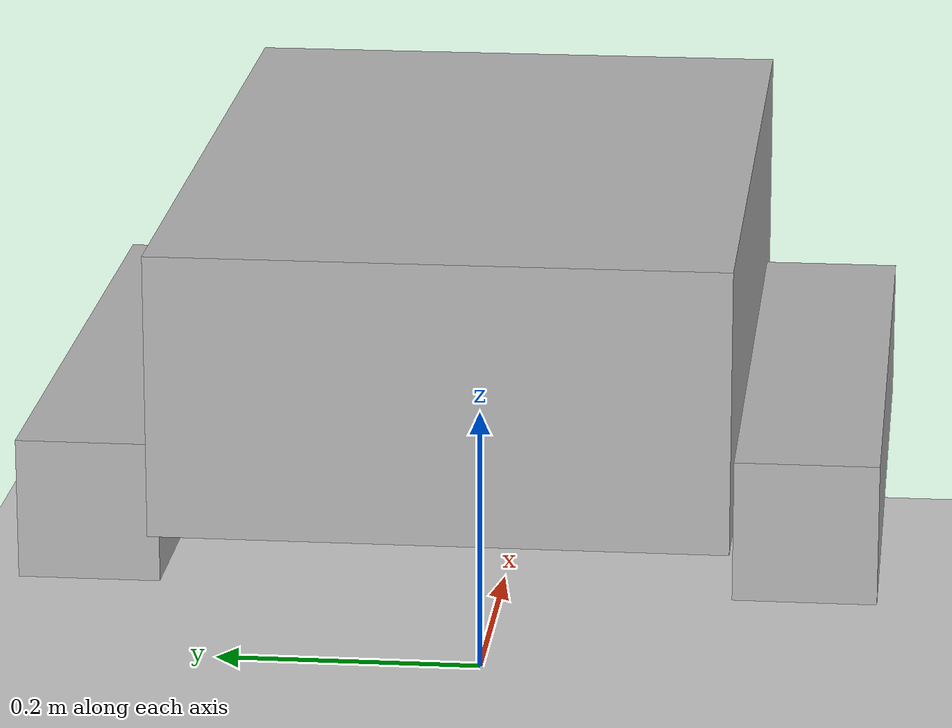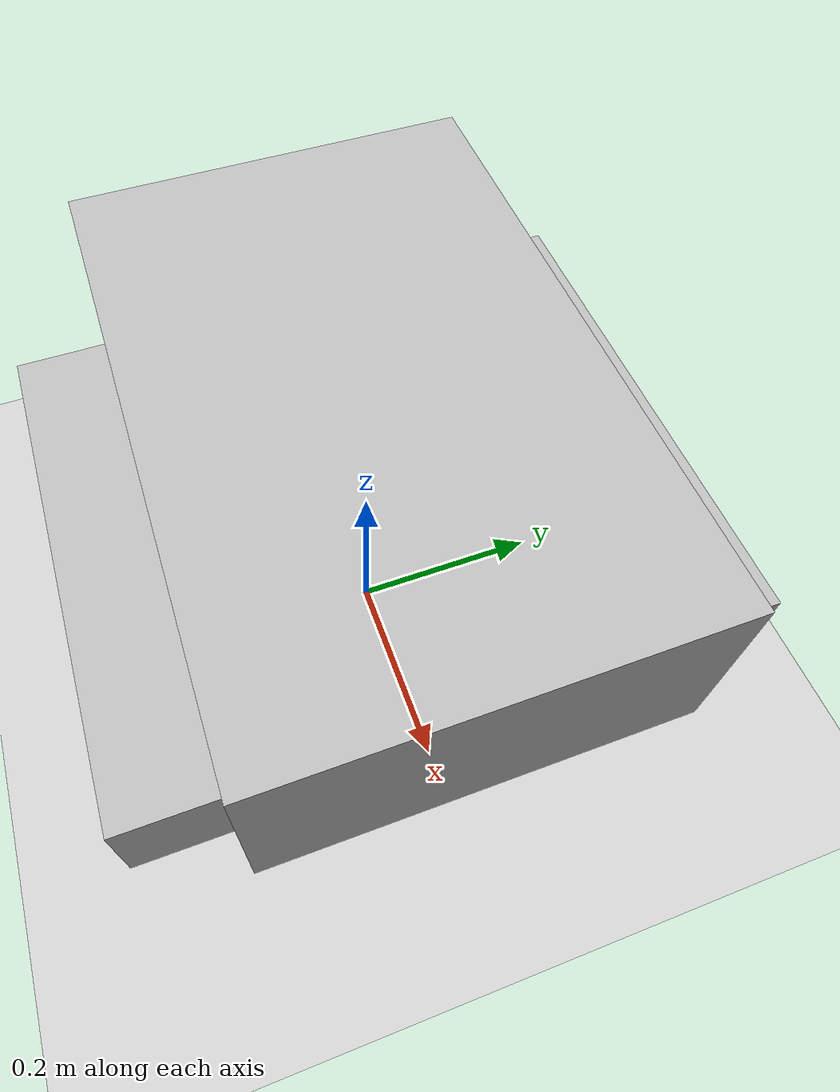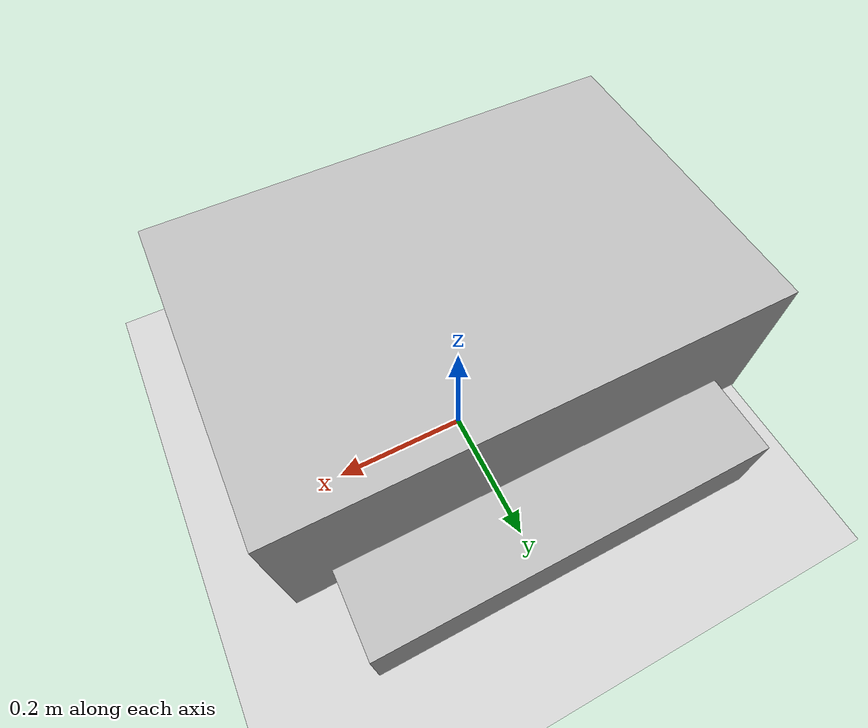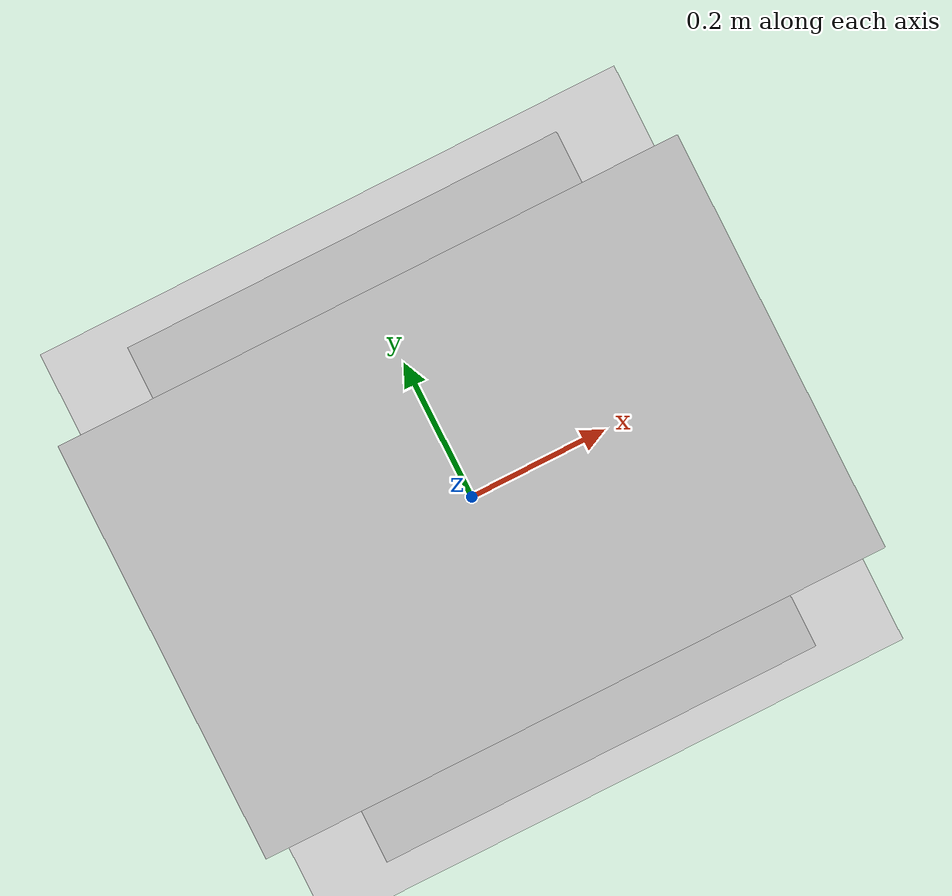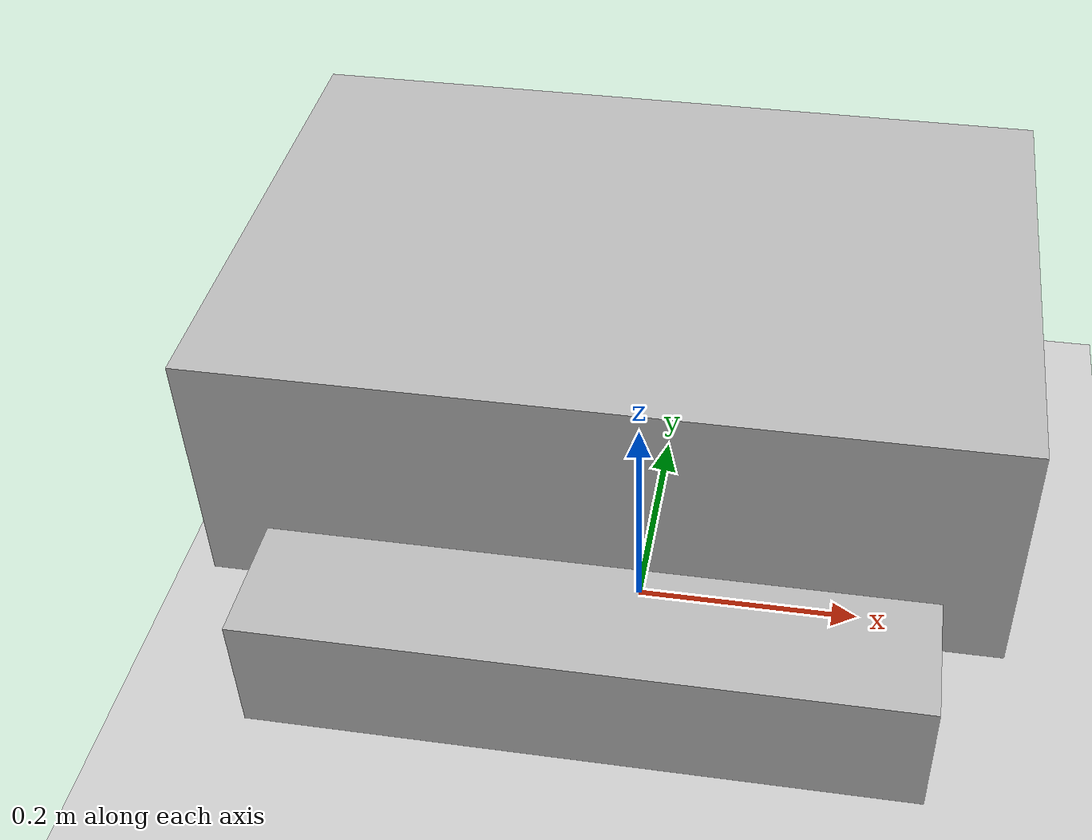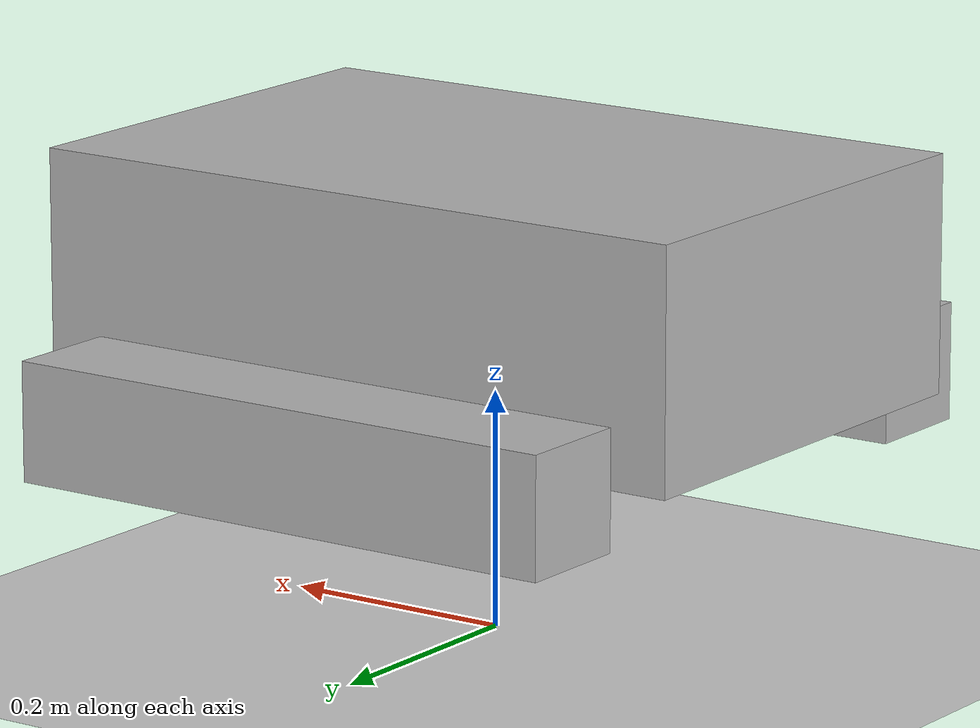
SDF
<?xml version="1.0" ?>
<sdf version="1.9">
  <world name="track_test">
    <physics name="4ms" type="ode">
      <max_step_size>0.004</max_step_size>
      <real_time_factor>1.0</real_time_factor>
    </physics>

    <plugin filename="gz-sim-physics-system" name="gz::sim::systems::Physics" />
    <plugin filename="gz-sim-user-commands-system" name="gz::sim::systems::UserCommands" />
    <plugin filename="gz-sim-scene-broadcaster-system" name="gz::sim::systems::SceneBroadcaster" />

    <light type="directional" name="sun">
      <cast_shadows>true</cast_shadows>
      <pose>0 0 10 0 0 0</pose>
      <diffuse>0.8 0.8 0.8 1</diffuse>
      <specular>0.2 0.2 0.2 1</specular>
      <direction>-0.5 0.1 -0.9</direction>
    </light>

    <model name="ground_plane">
      <static>true</static>
      <link name="link">
        <collision name="collision">
          <geometry><plane><normal>0 0 1</normal><size>100 100</size></plane></geometry>
        </collision>
        <visual name="visual">
          <geometry><plane><normal>0 0 1</normal><size>100 100</size></plane></geometry>
          <material><ambient>0.8 0.8 0.8 1</ambient><diffuse>0.8 0.8 0.8 1</diffuse></material>
        </visual>
      </link>
    </model>

    <model name="track_test_rig">
      <pose>0 0 0.3 0 0 0</pose>
      <link name="body_link">
        <inertial><mass>10</mass><inertia><ixx>0.3</ixx><iyy>0.5</iyy><izz>0.5</izz><ixy>0</ixy><ixz>0</ixz><iyz>0</iyz></inertia></inertial>
        <collision name="col"><geometry><box><size>0.6 0.4 0.2</size></box></geometry></collision>
        <visual name="vis"><geometry><box><size>0.6 0.4 0.2</size></box></geometry></visual>
      </link>

      <link name="left_track">
        <pose relative_to="body_link">0 0.25 -0.1 0 0 0</pose>
        <inertial><mass>1</mass><inertia><ixx>0.01</ixx><iyy>0.01</iyy><izz>0.01</izz><ixy>0</ixy><ixz>0</ixz><iyz>0</iyz></inertia></inertial>
        <collision name="col"><geometry><box><size>0.5 0.1 0.1</size></box></geometry></collision>
        <visual name="vis"><geometry><box><size>0.5 0.1 0.1</size></box></geometry></visual>
      </link>
      <joint name="left_track_joint" type="fixed">
        <parent>body_link</parent>
        <child>left_track</child>
      </joint>

      <link name="right_track">
        <pose relative_to="body_link">0 -0.25 -0.1 0 0 0</pose>
        <inertial><mass>1</mass><inertia><ixx>0.01</ixx><iyy>0.01</iyy><izz>0.01</izz><ixy>0</ixy><ixz>0</ixz><iyz>0</iyz></inertia></inertial>
        <collision name="col"><geometry><box><size>0.5 0.1 0.1</size></box></geometry></collision>
        <visual name="vis"><geometry><box><size>0.5 0.1 0.1</size></box></geometry></visual>
      </link>
      <joint name="right_track_joint" type="fixed">
        <parent>body_link</parent>
        <child>right_track</child>
      </joint>

      <plugin filename="gz-sim-track-controller-system" name="gz::sim::systems::TrackController">
        <link>left_track</link>
        <track_orientation>1 0 0</track_orientation>
        <max_velocity>5.0</max_velocity>
      </plugin>
      <plugin filename="gz-sim-track-controller-system" name="gz::sim::systems::TrackController">
        <link>right_track</link>
        <track_orientation>1 0 0</track_orientation>
        <max_velocity>5.0</max_velocity>
      </plugin>

      <plugin filename="gz-sim-tracked-vehicle-system" name="gz::sim::systems::TrackedVehicle">
        <body_link>body_link</body_link>
        <left_track link="left_track"/>
        <right_track link="right_track"/>
        <tracks_separation>0.5</tracks_separation>
        <max_velocity>5.0</max_velocity>
        <max_acceleration>3.0</max_acceleration>
      </plugin>
    </model>
  </world>
</sdf>
